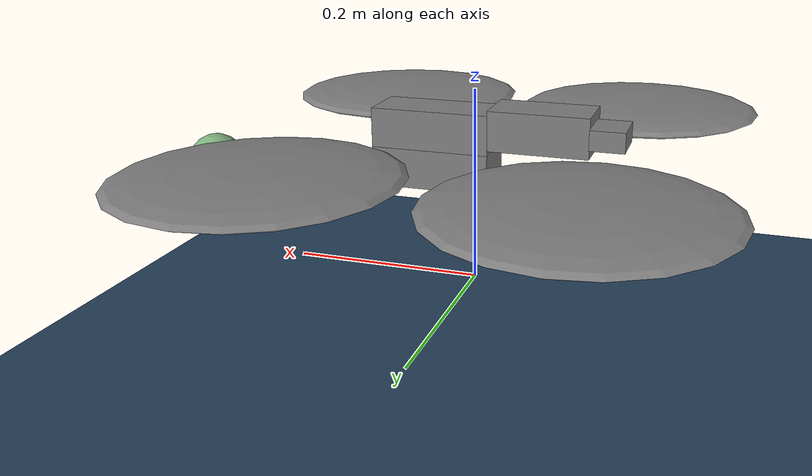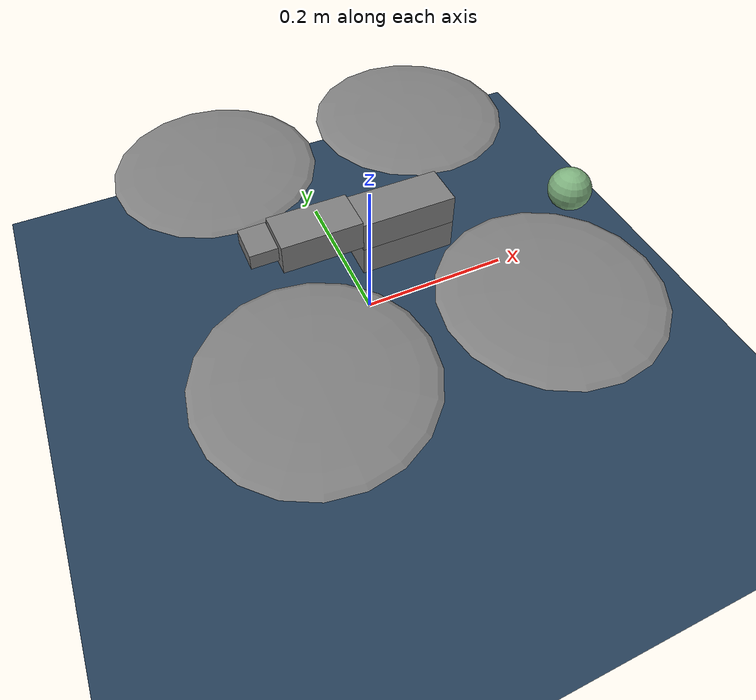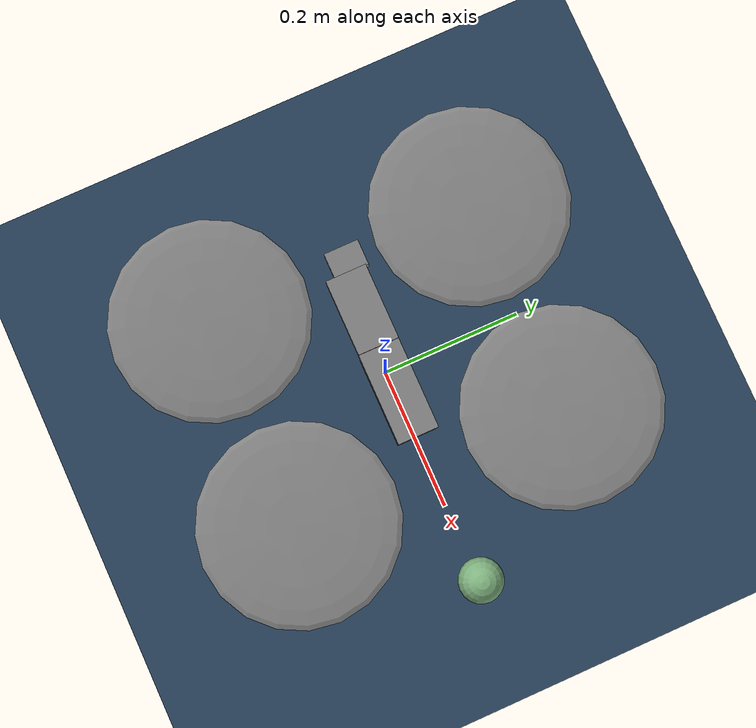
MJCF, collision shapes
<mujoco model="Skydio X2 scene">

  <include file="x2.xml"/>

  <option
    gravity="0 0 -9.81"
    density="1.225"
    viscosity="1.8e-5"
    timestep="0.01"
    iterations="50"
    tolerance="1e-10"
    solver="Newton"/>

  <size memory="50M"/>
  <statistic center="0 0 0.1" extent="0.6" meansize=".05"/>

  <asset>
    <texture type="2d" name="groundplane" builtin="checker" mark="edge" rgb1="0.2 0.3 0.4" rgb2="0.1 0.2 0.3"
      markrgb="0.8 0.8 0.8" width="300" height="300"/>
    <material name="groundplane" texture="groundplane" texuniform="true" texrepeat="5 5" reflectance="0.2"/>
  </asset>

  <worldbody>
    <light pos="0 0 1"/>
    <light pos="0.3 0 1.5" dir="0 0 -1" directional="true"/>
    <geom name="floor" pos="0 0 -0.1" size="0 0 0.05" type="plane" material="groundplane"/>

    <body name="object" pos="0.3 0 0.1">
      <geom type="sphere" size="0.03" rgba="0.5 0.7 0.5 1"/>  <!-- Simple sphere with basic physics -->
    </body>
  </worldbody>

</mujoco>

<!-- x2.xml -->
<mujoco model="Skydio X2">
  <compiler autolimits="true" assetdir="assets"/>

  <option density="1.225" viscosity="1.8e-5"/>

  <default>
    <default class="x2">
      <geom mass="0"/>
      <motor ctrlrange="0 13"/>
      <mesh scale="0.01 0.01 0.01"/>
      <default class="visual">
        <geom group="2" type="mesh" contype="0" conaffinity="0"/>
      </default>
      <default class="collision">
        <geom group="3" type="box"/>
        <default class="rotor">
          <geom type="ellipsoid" size=".13 .13 .01"/>
        </default>
      </default>
      <site group="5"/>
    </default>
  </default>

  <asset>
    <texture type="2d" file="X2_lowpoly_texture_SpinningProps_1024.png"/>
    <material name="phong3SG" texture="X2_lowpoly_texture_SpinningProps_1024"/>
    <material name="invisible" rgba="0 0 0 0"/>
    <mesh class="x2" file="X2_lowpoly.obj"/>
  </asset>

  <worldbody>
    <light name="spotlight" mode="targetbodycom" target="x2" pos="0 -1 2"/>
    <body name="x2" pos="0 0 0.1" childclass="x2">
      <freejoint/>
      <camera name="track" pos="-1 0 .5" xyaxes="0 -1 0 1 0 2" mode="trackcom"/>
      <site name="imu" pos="0 0 .02"/>
      <geom material="phong3SG" mesh="X2_lowpoly" class="visual" quat="0 0 1 1"/>
      <geom class="collision" size=".06 .027 .02" pos=".04 0 .02"/>
      <geom class="collision" size=".06 .027 .02" pos=".04 0 .06"/>
      <geom class="collision" size=".05 .027 .02" pos="-.07 0 .065"/>
      <geom class="collision" size=".023 .017 .01" pos="-.137 .008 .065" quat="1 0 0 1"/>
      <geom name="rotor1" class="rotor" pos="-.14 -.18 .05" mass=".25"/>
      <geom name="rotor2" class="rotor" pos="-.14 .18 .05" mass=".25"/>
      <geom name="rotor3" class="rotor" pos=".14 .18 .05" mass=".25"/>
      <geom name="rotor4" class="rotor" pos=".14 -.18 .05" mass=".25"/>
      <geom size=".16 .04 .02" pos="0 0 0.02" type="ellipsoid" mass=".325" class="visual" material="invisible"/>
      <site name="thrust1" pos="-.14 -.18 .05"/>
      <site name="thrust2" pos="-.14 .18 .05"/>
      <site name="thrust3" pos=".14 .18 .05"/>
      <site name="thrust4" pos=".14 -.18 .05"/>
    </body>
  </worldbody>

  <actuator>
    <motor class="x2" name="thrust1" site="thrust1" gear="0 0 1 0 0 -.0201"/>
    <motor class="x2" name="thrust2" site="thrust2" gear="0 0 1 0 0  .0201"/>
    <motor class="x2" name="thrust3" site="thrust3" gear="0 0 1 0 0  .0201"/>
    <motor class="x2" name="thrust4" site="thrust4" gear="0 0 1 0 0 -.0201"/>
  </actuator>

  <sensor>
    <gyro name="body_gyro" site="imu"/>
    <accelerometer name="body_linacc" site="imu"/>
    <framequat name="body_quat" objtype="site" objname="imu"/>
  </sensor>

  <keyframe>
    <key name="hover" qpos="0 0 .3 1 0 0 0" ctrl="3.2495625 3.2495625 3.2495625 3.2495625"/>
  </keyframe>

</mujoco>
